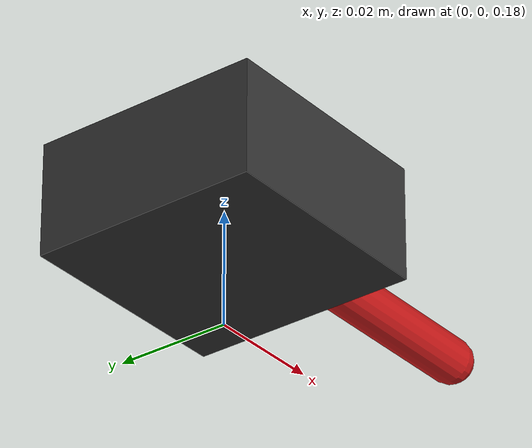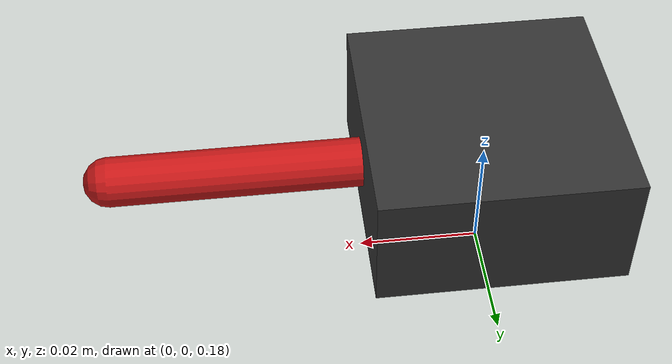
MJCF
<mujoco model="single_motor">
  <compiler angle="radian" coordinate="local"/>
  <option gravity="0 0 -9.81" timestep="0.001"/>

  <worldbody>
    <!-- Fixed base link (no joint => fixed in world) -->
    <body name="base" pos="0 0 0.2">
      <geom name="base_geom" type="box" size="0.02 0.02 0.01" mass="0.1" rgba="0.2 0.2 0.2 1"/>
      <freejoint name="floating_base" />
      <inertial pos="0.00175 0.00112 0.01" mass="12.974" fullinertia="0.15110 0.12880 0.08070 -0.00136 0.00843 -0.00089"/>
      <!-- 1-DOF revolute joint on the child link -->
      <body name="dummy_link" pos="0 0 0">
        <joint name="motor_joint" type="hinge" axis="0 0 1" range="-3.1416 3.1416" limited="true" armature="0.1"/>

        <!-- Very light, short rod for visible motion -->
        <inertial mass="1e-4" diaginertia="1e-6 1e-6 1e-6"/>
        <geom name="dummy_rod" type="capsule" fromto="0 0 0 0.06 0 0" size="0.004" rgba="0.8 0.1 0.1 1"/>
        <site name="tip_site" pos="0.06 0 0" size="0.003" rgba="1 0 0 1"/>
      </body>
    </body>
  </worldbody>
</mujoco>
